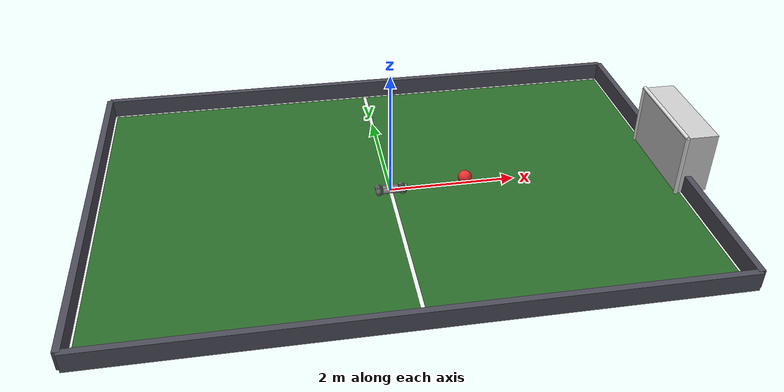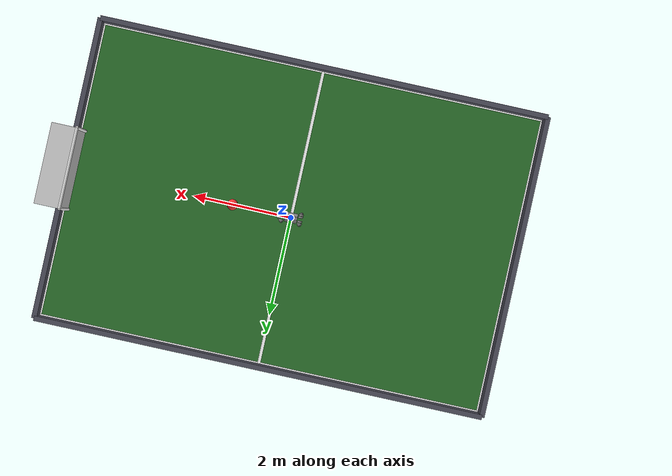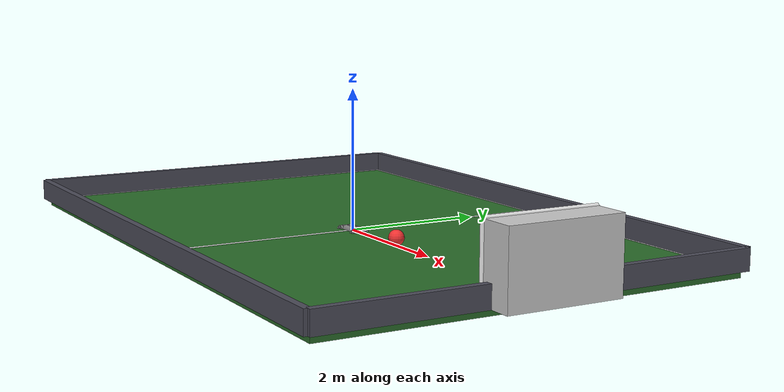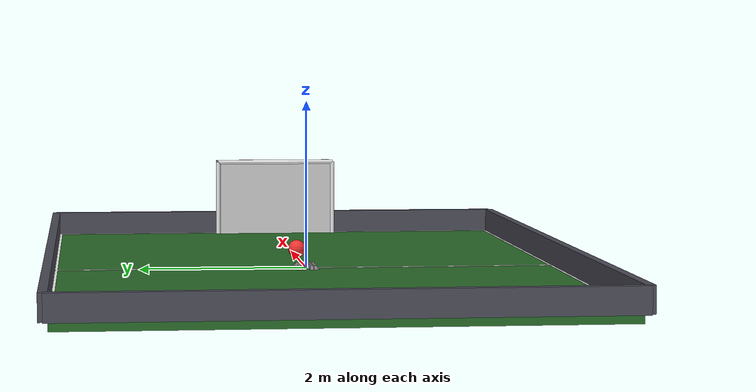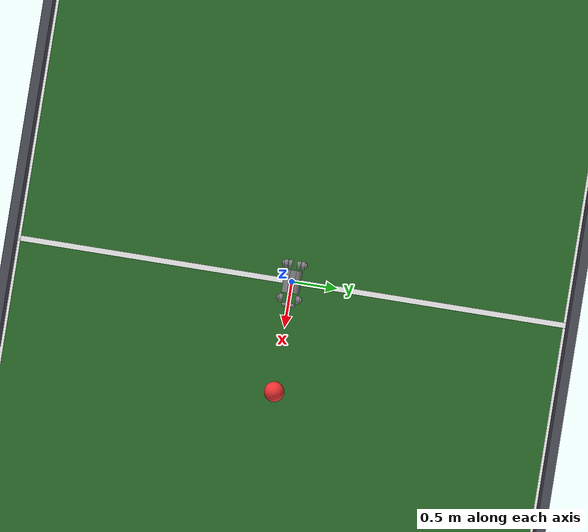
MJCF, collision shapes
<mujoco model="football_field_scene">
  <compiler angle="radian" autolimits="true"/>

  <!-- 引入官方 Go1 机器人资产模型 -->
  <include file="../robots_location/mujoco_menagerie/unitree_go1/go1.xml"/>

  <statistic center="0 0 0.4" extent="4.0"/>

  <visual>
    <!-- 关闭随动头灯，避免视角旋转时的光斑闪烁 -->
    <headlight diffuse="0 0 0" ambient="0 0 0" specular="0 0 0"/>
    <rgba haze="0 0 0 0"/>
    <global azimuth="-135" elevation="-25"/>
  </visual>

  <asset>
    <texture type="skybox" builtin="gradient" rgb1="0.3 0.5 0.7" rgb2="0.05 0.1 0.2" width="512" height="300"/>
    <texture type="2d" name="grass" builtin="checker" mark="none" rgb1="0.18 0.45 0.18" rgb2="0.15 0.40 0.15" width="200" height="200"/>
    <material name="grass_mat" texture="grass" texrepeat="20 20" reflectance="0.05"/>

    <material name="line_mat" rgba="0.95 0.95 0.95 1" reflectance="0.1"/>
    <material name="goal_mat" rgba="0.9 0.9 0.9 1" reflectance="0.2"/>
    <material name="wall_mat" rgba="0.3 0.3 0.35 0.6"/>
    <material name="ball_mat" rgba="0.95 0.2 0.2 1" reflectance="0.3"/>
  </asset>

  <worldbody>
    <!-- 主环境光源 -->
    <light pos="0 0 5.0" dir="0 0 -1" directional="true" diffuse="0.9 0.9 0.9" specular="0.1 0.1 0.1" ambient="0.4 0.4 0.4"/>

    <!-- 1. 草地主地面 (9m x 6m) -->
    <geom name="field_floor" size="4.5 3.0 0.05" pos="0 0 -0.05" type="box" material="grass_mat" friction="0.8 0.01 0.005"/>

    <!-- 2. 足球场白色标线 -->
    <geom name="mid_line" size="0.03 3.0 0.001" pos="0 0 0.001" type="box" material="line_mat" conaffinity="0" contype="0"/>
    <geom name="line_top" size="4.5 0.03 0.001" pos="0 3.0 0.001" type="box" material="line_mat" conaffinity="0" contype="0"/>
    <geom name="line_bottom" size="4.5 0.03 0.001" pos="0 -3.0 0.001" type="box" material="line_mat" conaffinity="0" contype="0"/>
    <geom name="line_left" size="0.03 3.0 0.001" pos="-4.5 0 0.001" type="box" material="line_mat" conaffinity="0" contype="0"/>
    <geom name="line_right" size="0.03 3.0 0.001" pos="4.5 0 0.001" type="box" material="line_mat" conaffinity="0" contype="0"/>

    <!-- 3. 四周防撞挡板 -->
    <geom name="wall_n" size="4.55 0.05 0.15" pos="0 3.05 0.15" type="box" material="wall_mat"/>
    <geom name="wall_s" size="4.55 0.05 0.15" pos="0 -3.05 0.15" type="box" material="wall_mat"/>
    <geom name="wall_w" size="0.05 3.05 0.15" pos="-4.55 0 0.15" type="box" material="wall_mat"/>
    <geom name="wall_e" size="0.05 3.05 0.15" pos="4.55 0 0.15" type="box" material="wall_mat"/>

    <!-- 4. 正前方球门 -->
    <body name="goal_post" pos="4.4 0 0">
      <geom size="0.03 0.5" pos="0 -0.8 0.5" type="cylinder" material="goal_mat"/>
      <geom size="0.03 0.5" pos="0 0.8 0.5" type="cylinder" material="goal_mat"/>
      <geom size="0.03 0.8" pos="0 0 1.0" euler="1.5708 0 0" type="cylinder" material="goal_mat"/>
      <geom size="0.25 0.8 0.5" pos="0.25 0 0.5" type="box" rgba="0.8 0.8 0.8 0.3"/>
    </body>

    <!-- 5. 真实物理 5 号足球 (半径 11cm, 质量 0.43kg) -->
    <body name="soccer_ball" pos="1.2 0 0.11">
      <freejoint name="ball_joint"/>
      <geom name="ball_geom" type="sphere" size="0.11" mass="0.43"
            material="ball_mat"
            friction="0.7 0.01 0.002"
            solref="0.015 1" solimp="0.9 0.95 0.001"/>
    </body>
  </worldbody>
</mujoco>

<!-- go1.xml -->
<mujoco model="go1">
  <compiler angle="radian" meshdir="assets" autolimits="true"/>

  <option cone="elliptic" impratio="100"/>

  <default>
    <default class="go1">
      <geom friction="0.6" margin="0.001" condim="1"/>
      <joint axis="0 1 0" damping="2" armature="0.01" frictionloss="0.2"/>
      <position kp="100" forcerange="-23.7 23.7"/>
      <default class="abduction">
        <joint axis="1 0 0" damping="1" range="-0.863 0.863"/>
        <position ctrlrange="-0.863 0.863"/>
      </default>
      <default class="hip">
        <joint range="-0.686 4.501"/>
        <position ctrlrange="-0.686 4.501"/>
      </default>
      <default class="knee">
        <joint range="-2.818 -0.888"/>
        <position forcerange="-35.55 35.55" ctrlrange="-2.818 -0.888"/>
      </default>
      <default class="visual">
        <geom type="mesh" contype="0" conaffinity="0" group="2" material="dark"/>
      </default>
      <default class="collision">
        <geom group="3" type="capsule"/>
        <default class="hip_left1">
          <geom size="0.046 0.02" pos="0 0.045 0" quat="1 1 0 0" type="cylinder"/>
        </default>
        <default class="hip_left2">
          <geom size="0.031 0.02" pos="0 0.065 0" quat="1 1 0 0" type="cylinder"/>
        </default>
        <default class="hip_left3">
          <geom size="0.046 0.02" quat="1 1 0 0" type="cylinder"/>
        </default>
        <default class="hip_right1">
          <geom size="0.046 0.02" pos="0 -0.045 0" quat="1 1 0 0" type="cylinder"/>
        </default>
        <default class="hip_right2">
          <geom size="0.031 0.02" pos="0 -0.065 0" quat="1 1 0 0" type="cylinder"/>
        </default>
        <default class="hip_right3">
          <geom size="0.046 0.02" quat="1 1 0 0" type="cylinder"/>
        </default>
        <default class="thigh1">
          <geom size="0.015" fromto="-0.02 0 0 -0.02 0 -0.16"/>
        </default>
        <default class="thigh2">
          <geom size="0.015" fromto="0 0 0 -0.02 0 -0.1"/>
        </default>
        <default class="thigh3">
          <geom size="0.015" fromto="-0.02 0 -0.16 0 0 -0.2"/>
        </default>
        <default class="calf1">
          <geom size="0.01" fromto="0 0 0 0.02 0 -0.13"/>
        </default>
        <default class="calf2">
          <geom size="0.01" fromto="0.02 0 -0.13 0 0 -0.2"/>
        </default>
        <default class="foot">
          <geom type="sphere" size="0.023" pos="0 0 -0.213" priority="1" solimp="0.015 1 0.031" condim="6"
            friction="0.8 0.02 0.01"/>
        </default>
      </default>
    </default>
  </default>

  <asset>
    <material name="dark" rgba="0.1 0.1 0.1 1"/>
    <mesh class="go1" file="trunk.stl"/>
    <mesh class="go1" file="hip.stl"/>
    <mesh class="go1" file="thigh_mirror.stl"/>
    <mesh class="go1" file="calf.stl"/>
    <mesh class="go1" file="thigh.stl"/>
  </asset>

  <worldbody>
    <body name="trunk" pos="0 0 0" childclass="go1">
      <camera name="tracking" mode="trackcom" pos="0 -1 0.8" xyaxes="1 0 0 0 1 1"/>
      <site name="head" pos="0.3 0 0" rgba="1 0 0 1" size="0.02" group="5"/>
      <inertial pos="0.0223 0.002 -0.0005" quat="-0.00342088 0.705204 0.000106698 0.708996" mass="5.204"
        diaginertia="0.0716565 0.0630105 0.0168101"/>
      <geom class="visual" mesh="trunk"/>
      <geom class="collision" size="0.125 0.04 0.057" type="box"/>
      <geom class="collision" quat="1 0 1 0" pos="0 -0.04 0" size="0.058 0.125" type="cylinder"/>
      <geom class="collision" quat="1 0 1 0" pos="0 +0.04 0" size="0.058 0.125" type="cylinder"/>
      <geom class="collision" pos="0.25 0 0" size="0.005 0.06 0.05" type="box"/>
      <geom class="collision" pos="0.25 0.06 -0.01" size="0.009 0.035"/>
      <geom class="collision" pos="0.25 -0.06 -0.01" size="0.009 0.035"/>
      <geom class="collision" pos="0.25 0 -0.05" size="0.01 0.06" quat="1 1 0 0"/>
      <geom class="collision" pos="0.255 0 0.0355" size="0.021 0.052" quat="1 1 0 0"/>
      <site name="imu" pos="0 0 0"/>
      <body name="FR_hip" pos="0.1881 -0.04675 0">
        <inertial pos="-0.0049166 0.00762615 -8.865e-05" quat="0.507341 0.514169 0.495027 0.482891" mass="0.68"
          diaginertia="0.000734064 0.000468438 0.000398719"/>
        <joint class="abduction" name="FR_hip_joint"/>
        <geom class="visual" mesh="hip" quat="1 0 0 0"/>
        <geom class="hip_right1"/>
        <geom class="hip_right2"/>
        <body name="FR_thigh" pos="0 -0.08 0">
          <inertial pos="-0.00304722 0.019315 -0.0305004" quat="0.65243 -0.0272313 0.0775126 0.753383" mass="1.009"
            diaginertia="0.00478717 0.00460903 0.000709268"/>
          <joint class="hip" name="FR_thigh_joint"/>
          <geom class="visual" mesh="thigh_mirror"/>
          <geom class="thigh1"/>
          <geom class="thigh2"/>
          <geom class="thigh3"/>
          <body name="FR_calf" pos="0 0 -0.213">
            <inertial pos="0.00429862 0.000976676 -0.146197" quat="0.691246 0.00357467 0.00511118 0.722592"
              mass="0.195862" diaginertia="0.00149767 0.00148468 3.58427e-05"/>
            <joint class="knee" name="FR_calf_joint"/>
            <geom class="visual" mesh="calf"/>
            <geom class="calf1"/>
            <geom class="calf2"/>
            <geom name="FR" class="foot"/>
            <site name="FR" pos="0 0 -0.213" type="sphere" size="0.023" group="5"/>
          </body>
        </body>
      </body>
      <body name="FL_hip" pos="0.1881 0.04675 0">
        <inertial pos="-0.0049166 -0.00762615 -8.865e-05" quat="0.482891 0.495027 0.514169 0.507341" mass="0.68"
          diaginertia="0.000734064 0.000468438 0.000398719"/>
        <joint class="abduction" name="FL_hip_joint"/>
        <geom class="visual" mesh="hip"/>
        <geom class="hip_left1"/>
        <geom class="hip_left2"/>
        <body name="FL_thigh" pos="0 0.08 0">
          <inertial pos="-0.00304722 -0.019315 -0.0305004" quat="0.753383 0.0775126 -0.0272313 0.65243" mass="1.009"
            diaginertia="0.00478717 0.00460903 0.000709268"/>
          <joint class="hip" name="FL_thigh_joint"/>
          <geom class="visual" mesh="thigh"/>
          <geom class="thigh1"/>
          <geom class="thigh2"/>
          <geom class="thigh3"/>
          <body name="FL_calf" pos="0 0 -0.213">
            <inertial pos="0.00429862 0.000976676 -0.146197" quat="0.691246 0.00357467 0.00511118 0.722592"
              mass="0.195862" diaginertia="0.00149767 0.00148468 3.58427e-05"/>
            <joint class="knee" name="FL_calf_joint"/>
            <geom class="visual" mesh="calf"/>
            <geom class="calf1"/>
            <geom class="calf2"/>
            <geom name="FL" class="foot"/>
            <site name="FL" pos="0 0 -0.213" type="sphere" size="0.023" group="5"/>
          </body>
        </body>
      </body>
      <body name="RR_hip" pos="-0.1881 -0.04675 0">
        <inertial pos="0.0049166 0.00762615 -8.865e-05" quat="0.495027 0.482891 0.507341 0.514169" mass="0.68"
          diaginertia="0.000734064 0.000468438 0.000398719"/>
        <joint class="abduction" name="RR_hip_joint"/>
        <geom class="visual" quat="0 0 0 -1" mesh="hip"/>
        <geom class="hip_right1"/>
        <geom class="hip_right2"/>
        <geom class="hip_right3"/>
        <body name="RR_thigh" pos="0 -0.08 0">
          <inertial pos="-0.00304722 0.019315 -0.0305004" quat="0.65243 -0.0272313 0.0775126 0.753383" mass="1.009"
            diaginertia="0.00478717 0.00460903 0.000709268"/>
          <joint class="hip" name="RR_thigh_joint"/>
          <geom class="visual" mesh="thigh_mirror"/>
          <geom class="thigh1"/>
          <geom class="thigh2"/>
          <geom class="thigh3"/>
          <body name="RR_calf" pos="0 0 -0.213">
            <inertial pos="0.00429862 0.000976676 -0.146197" quat="0.691246 0.00357467 0.00511118 0.722592"
              mass="0.195862" diaginertia="0.00149767 0.00148468 3.58427e-05"/>
            <joint class="knee" name="RR_calf_joint"/>
            <geom class="visual" mesh="calf"/>
            <geom class="calf1"/>
            <geom class="calf2"/>
            <geom name="RR" class="foot"/>
            <site name="RR" pos="0 0 -0.213" type="sphere" size="0.023" group="5"/>
          </body>
        </body>
      </body>
      <body name="RL_hip" pos="-0.1881 0.04675 0">
        <inertial pos="0.0049166 -0.00762615 -8.865e-05" quat="0.514169 0.507341 0.482891 0.495027" mass="0.68"
          diaginertia="0.000734064 0.000468438 0.000398719"/>
        <joint class="abduction" name="RL_hip_joint"/>
        <geom class="visual" quat="0 0 1 0" mesh="hip"/>
        <geom class="hip_left1"/>
        <geom class="hip_left2"/>
        <geom class="hip_left3"/>
        <body name="RL_thigh" pos="0 0.08 0">
          <inertial pos="-0.00304722 -0.019315 -0.0305004" quat="0.753383 0.0775126 -0.0272313 0.65243" mass="1.009"
            diaginertia="0.00478717 0.00460903 0.000709268"/>
          <joint class="hip" name="RL_thigh_joint"/>
          <geom class="visual" mesh="thigh"/>
          <geom class="thigh1"/>
          <geom class="thigh2"/>
          <geom class="thigh3"/>
          <body name="RL_calf" pos="0 0 -0.213">
            <inertial pos="0.00429862 0.000976676 -0.146197" quat="0.691246 0.00357467 0.00511118 0.722592"
              mass="0.195862" diaginertia="0.00149767 0.00148468 3.58427e-05"/>
            <joint class="knee" name="RL_calf_joint"/>
            <geom class="visual" mesh="calf"/>
            <geom class="calf1"/>
            <geom class="calf2"/>
            <geom name="RL" class="foot"/>
            <site name="RL" pos="0 0 -0.213" type="sphere" size="0.023" group="5"/>
          </body>
        </body>
      </body>
    </body>
  </worldbody>

  <actuator>
    <position class="abduction" name="FR_hip" joint="FR_hip_joint"/>
    <position class="hip" name="FR_thigh" joint="FR_thigh_joint"/>
    <position class="knee" name="FR_calf" joint="FR_calf_joint"/>
    <position class="abduction" name="FL_hip" joint="FL_hip_joint"/>
    <position class="hip" name="FL_thigh" joint="FL_thigh_joint"/>
    <position class="knee" name="FL_calf" joint="FL_calf_joint"/>
    <position class="abduction" name="RR_hip" joint="RR_hip_joint"/>
    <position class="hip" name="RR_thigh" joint="RR_thigh_joint"/>
    <position class="knee" name="RR_calf" joint="RR_calf_joint"/>
    <position class="abduction" name="RL_hip" joint="RL_hip_joint"/>
    <position class="hip" name="RL_thigh" joint="RL_thigh_joint"/>
    <position class="knee" name="RL_calf" joint="RL_calf_joint"/>
  </actuator>

  <keyframe>
    <key name="home" qpos="0 0.9 -1.8 0 0.9 -1.8 0 0.9 -1.8 0 0.9 -1.8"
      ctrl="0 0.9 -1.8 0 0.9 -1.8 0 0.9 -1.8 0 0.9 -1.8"/>
  </keyframe>
</mujoco>
